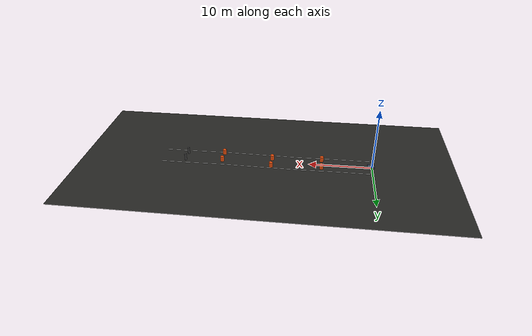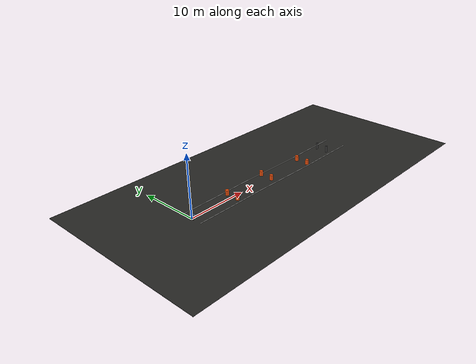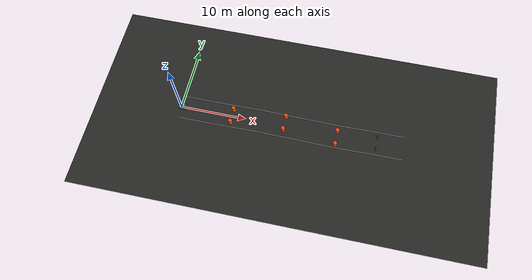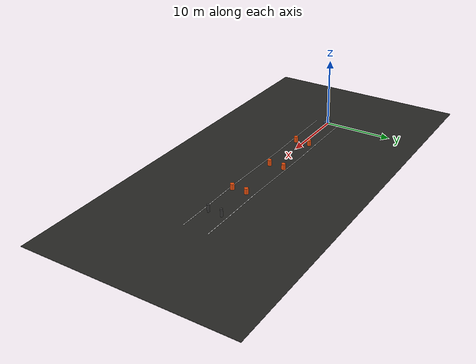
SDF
<?xml version='1.0'?>
<sdf version='1.9'>
  <world name='igvc_competition'>
    <plugin filename='ignition-gazebo-physics-system' name='ignition::gazebo::systems::Physics'/>
    <plugin filename='ignition-gazebo-user-commands-system' name='ignition::gazebo::systems::UserCommands'/>
    <plugin filename='ignition-gazebo-scene-broadcaster-system' name='ignition::gazebo::systems::SceneBroadcaster'/>
    <plugin filename='ignition-gazebo-sensors-system' name='ignition::gazebo::systems::Sensors'>
      <render_engine>ogre2</render_engine>
    </plugin>
    <light name='sun' type='directional'>
      <pose>0 0 20 0 0 0</pose>
      <diffuse>0.8 0.8 0.75 1</diffuse>
      <specular>0.2 0.2 0.2 1</specular>
      <direction>-0.35 0.15 -0.92</direction>
    </light>
    <gravity>0 0 -9.80665</gravity>
    <magnetic_field>6e-06 2.3e-05 -4.2e-05</magnetic_field>
    <atmosphere type='adiabatic'/>
    <physics name='default_physics' type='ode'>
      <max_step_size>0.001</max_step_size>
      <real_time_factor>1.0</real_time_factor>
      <real_time_update_rate>1000</real_time_update_rate>
    </physics>
    <scene>
      <ambient>0.45 0.45 0.45 1</ambient>
      <background>0.70 0.72 0.75 1</background>
      <shadows>true</shadows>
    </scene>
    <spherical_coordinates>
      <surface_model>EARTH_WGS84</surface_model>
      <latitude_deg>37.23027000</latitude_deg>
      <longitude_deg>-80.42504000</longitude_deg>
      <elevation>650.000</elevation>
      <heading_deg>0</heading_deg>
    </spherical_coordinates>

    <model name='asphalt_ground'>
      <static>1</static>
      <pose>17.0000 0.0000 -0.0250 0.000000 0.000000 0.000000</pose>
      <link name='link'>
        <collision name='collision'><geometry><box><size>60.0000 30.0000 0.0500</size></box></geometry></collision>
        <visual name='visual'>
          <geometry><box><size>60.0000 30.0000 0.0500</size></box></geometry>
          <material><ambient>0.16 0.16 0.15 1.0</ambient><diffuse>0.16 0.16 0.15 1.0</diffuse><specular>0.05 0.05 0.05 1</specular></material>
        </visual>
      </link>
    </model>
    <model name='left_boundary_0'>
      <static>1</static>
      <pose>2.9924 1.8288 0.011 0 0 -0.000011</pose>
      <link name='link'>
        <visual name='visual'>
          <geometry><box><size>5.9848 0.0762 0.012</size></box></geometry>
          <material><ambient>0.98 0.98 0.98 1</ambient><diffuse>0.98 0.98 0.98 1</diffuse><specular>0.05 0.05 0.05 1</specular><emissive>0.9 0.9 0.9 1</emissive></material>
        </visual>
      </link>
    </model>
    <model name='right_boundary_0'>
      <static>1</static>
      <pose>3.0076 -1.8288 0.011 0 0 0.000011</pose>
      <link name='link'>
        <visual name='visual'>
          <geometry><box><size>6.0152 0.0762 0.012</size></box></geometry>
          <material><ambient>0.98 0.98 0.98 1</ambient><diffuse>0.98 0.98 0.98 1</diffuse><specular>0.05 0.05 0.05 1</specular><emissive>0.9 0.9 0.9 1</emissive></material>
        </visual>
      </link>
    </model>
    <model name='left_boundary_1'>
      <static>1</static>
      <pose>8.9924 1.8788 0.011 0 0 0.016633</pose>
      <link name='link'>
        <visual name='visual'>
          <geometry><box><size>6.0161 0.0762 0.012</size></box></geometry>
          <material><ambient>0.98 0.98 0.98 1</ambient><diffuse>0.98 0.98 0.98 1</diffuse><specular>0.05 0.05 0.05 1</specular><emissive>0.9 0.9 0.9 1</emissive></material>
        </visual>
      </link>
    </model>
    <model name='right_boundary_1'>
      <static>1</static>
      <pose>9.0076 -1.7788 0.011 0 0 0.016697</pose>
      <link name='link'>
        <visual name='visual'>
          <geometry><box><size>5.9856 0.0762 0.012</size></box></geometry>
          <material><ambient>0.98 0.98 0.98 1</ambient><diffuse>0.98 0.98 0.98 1</diffuse><specular>0.05 0.05 0.05 1</specular><emissive>0.9 0.9 0.9 1</emissive></material>
        </visual>
      </link>
    </model>
    <model name='left_boundary_2'>
      <static>1</static>
      <pose>15.0152 1.8787 0.011 0 0 -0.016623</pose>
      <link name='link'>
        <visual name='visual'>
          <geometry><box><size>6.0313 0.0762 0.012</size></box></geometry>
          <material><ambient>0.98 0.98 0.98 1</ambient><diffuse>0.98 0.98 0.98 1</diffuse><specular>0.05 0.05 0.05 1</specular><emissive>0.9 0.9 0.9 1</emissive></material>
        </visual>
      </link>
    </model>
    <model name='right_boundary_2'>
      <static>1</static>
      <pose>14.9848 -1.7787 0.011 0 0 -0.016708</pose>
      <link name='link'>
        <visual name='visual'>
          <geometry><box><size>5.9704 0.0762 0.012</size></box></geometry>
          <material><ambient>0.98 0.98 0.98 1</ambient><diffuse>0.98 0.98 0.98 1</diffuse><specular>0.05 0.05 0.05 1</specular><emissive>0.9 0.9 0.9 1</emissive></material>
        </visual>
      </link>
    </model>
    <model name='left_boundary_3'>
      <static>1</static>
      <pose>21.0152 1.7787 0.011 0 0 -0.016708</pose>
      <link name='link'>
        <visual name='visual'>
          <geometry><box><size>5.9704 0.0762 0.012</size></box></geometry>
          <material><ambient>0.98 0.98 0.98 1</ambient><diffuse>0.98 0.98 0.98 1</diffuse><specular>0.05 0.05 0.05 1</specular><emissive>0.9 0.9 0.9 1</emissive></material>
        </visual>
      </link>
    </model>
    <model name='right_boundary_3'>
      <static>1</static>
      <pose>20.9848 -1.8787 0.011 0 0 -0.016623</pose>
      <link name='link'>
        <visual name='visual'>
          <geometry><box><size>6.0313 0.0762 0.012</size></box></geometry>
          <material><ambient>0.98 0.98 0.98 1</ambient><diffuse>0.98 0.98 0.98 1</diffuse><specular>0.05 0.05 0.05 1</specular><emissive>0.9 0.9 0.9 1</emissive></material>
        </visual>
      </link>
    </model>
    <model name='left_boundary_4'>
      <static>1</static>
      <pose>26.9909 1.7788 0.011 0 0 0.016701</pose>
      <link name='link'>
        <visual name='visual'>
          <geometry><box><size>5.9825 0.0762 0.012</size></box></geometry>
          <material><ambient>0.98 0.98 0.98 1</ambient><diffuse>0.98 0.98 0.98 1</diffuse><specular>0.05 0.05 0.05 1</specular><emissive>0.9 0.9 0.9 1</emissive></material>
        </visual>
      </link>
    </model>
    <model name='right_boundary_4'>
      <static>1</static>
      <pose>27.0091 -1.8788 0.011 0 0 0.016630</pose>
      <link name='link'>
        <visual name='visual'>
          <geometry><box><size>6.0191 0.0762 0.012</size></box></geometry>
          <material><ambient>0.98 0.98 0.98 1</ambient><diffuse>0.98 0.98 0.98 1</diffuse><specular>0.05 0.05 0.05 1</specular><emissive>0.9 0.9 0.9 1</emissive></material>
        </visual>
      </link>
    </model>
    <model name='left_boundary_5'>
      <static>1</static>
      <pose>31.9909 1.8288 0.011 0 0 0.000023</pose>
      <link name='link'>
        <visual name='visual'>
          <geometry><box><size>4.0183 0.0762 0.012</size></box></geometry>
          <material><ambient>0.98 0.98 0.98 1</ambient><diffuse>0.98 0.98 0.98 1</diffuse><specular>0.05 0.05 0.05 1</specular><emissive>0.9 0.9 0.9 1</emissive></material>
        </visual>
      </link>
    </model>
    <model name='right_boundary_5'>
      <static>1</static>
      <pose>32.0091 -1.8288 0.011 0 0 -0.000023</pose>
      <link name='link'>
        <visual name='visual'>
          <geometry><box><size>3.9817 0.0762 0.012</size></box></geometry>
          <material><ambient>0.98 0.98 0.98 1</ambient><diffuse>0.98 0.98 0.98 1</diffuse><specular>0.05 0.05 0.05 1</specular><emissive>0.9 0.9 0.9 1</emissive></material>
        </visual>
      </link>
    </model>
    <model name='gap1_left'>
      <static>1</static>
      <pose>8.0000 1.0800 0 0 0 0</pose>
      <link name='link'>
        <collision name='collision'><pose>0 0 0.4250 0 0 0</pose><geometry><cylinder><radius>0.2800</radius><length>0.8500</length></cylinder></geometry></collision>
        <visual name='visual'>
          <pose>0 0 0.4250 0 0 0</pose>
          <geometry><cylinder><radius>0.2800</radius><length>0.8500</length></cylinder></geometry>
          <material><ambient>0.95 0.32 0.05 1.0</ambient><diffuse>0.95 0.32 0.05 1.0</diffuse><specular>0.05 0.05 0.05 1</specular></material>
        </visual>
      </link>
    </model>
    <model name='gap1_right'>
      <static>1</static>
      <pose>8.0000 -1.0800 0 0 0 0</pose>
      <link name='link'>
        <collision name='collision'><pose>0 0 0.4250 0 0 0</pose><geometry><cylinder><radius>0.2800</radius><length>0.8500</length></cylinder></geometry></collision>
        <visual name='visual'>
          <pose>0 0 0.4250 0 0 0</pose>
          <geometry><cylinder><radius>0.2800</radius><length>0.8500</length></cylinder></geometry>
          <material><ambient>0.95 0.32 0.05 1.0</ambient><diffuse>0.95 0.32 0.05 1.0</diffuse><specular>0.05 0.05 0.05 1</specular></material>
        </visual>
      </link>
    </model>
    <model name='gap2_left'>
      <static>1</static>
      <pose>16.0000 1.4800 0 0 0 0</pose>
      <link name='link'>
        <collision name='collision'><pose>0 0 0.4250 0 0 0</pose><geometry><cylinder><radius>0.2800</radius><length>0.8500</length></cylinder></geometry></collision>
        <visual name='visual'>
          <pose>0 0 0.4250 0 0 0</pose>
          <geometry><cylinder><radius>0.2800</radius><length>0.8500</length></cylinder></geometry>
          <material><ambient>0.95 0.32 0.05 1.0</ambient><diffuse>0.95 0.32 0.05 1.0</diffuse><specular>0.05 0.05 0.05 1</specular></material>
        </visual>
      </link>
    </model>
    <model name='gap2_right'>
      <static>1</static>
      <pose>16.0000 -0.6800 0 0 0 0</pose>
      <link name='link'>
        <collision name='collision'><pose>0 0 0.4250 0 0 0</pose><geometry><cylinder><radius>0.2800</radius><length>0.8500</length></cylinder></geometry></collision>
        <visual name='visual'>
          <pose>0 0 0.4250 0 0 0</pose>
          <geometry><cylinder><radius>0.2800</radius><length>0.8500</length></cylinder></geometry>
          <material><ambient>0.95 0.32 0.05 1.0</ambient><diffuse>0.95 0.32 0.05 1.0</diffuse><specular>0.05 0.05 0.05 1</specular></material>
        </visual>
      </link>
    </model>
    <model name='gap3_left'>
      <static>1</static>
      <pose>24.0000 0.6800 0 0 0 0</pose>
      <link name='link'>
        <collision name='collision'><pose>0 0 0.4250 0 0 0</pose><geometry><cylinder><radius>0.2800</radius><length>0.8500</length></cylinder></geometry></collision>
        <visual name='visual'>
          <pose>0 0 0.4250 0 0 0</pose>
          <geometry><cylinder><radius>0.2800</radius><length>0.8500</length></cylinder></geometry>
          <material><ambient>0.95 0.32 0.05 1.0</ambient><diffuse>0.95 0.32 0.05 1.0</diffuse><specular>0.05 0.05 0.05 1</specular></material>
        </visual>
      </link>
    </model>
    <model name='gap3_right'>
      <static>1</static>
      <pose>24.0000 -1.4800 0 0 0 0</pose>
      <link name='link'>
        <collision name='collision'><pose>0 0 0.4250 0 0 0</pose><geometry><cylinder><radius>0.2800</radius><length>0.8500</length></cylinder></geometry></collision>
        <visual name='visual'>
          <pose>0 0 0.4250 0 0 0</pose>
          <geometry><cylinder><radius>0.2800</radius><length>0.8500</length></cylinder></geometry>
          <material><ambient>0.95 0.32 0.05 1.0</ambient><diffuse>0.95 0.32 0.05 1.0</diffuse><specular>0.05 0.05 0.05 1</specular></material>
        </visual>
      </link>
    </model>
    <model name='gap4_left'>
      <static>1</static>
      <pose>30.0000 0.9800 0 0 0 0</pose>
      <link name='link'>
        <collision name='collision'><pose>0 0 0.5500 0 0 0</pose><geometry><cylinder><radius>0.1800</radius><length>1.1000</length></cylinder></geometry></collision>
        <visual name='visual'>
          <pose>0 0 0.5500 0 0 0</pose>
          <geometry><cylinder><radius>0.1800</radius><length>1.1000</length></cylinder></geometry>
          <material><ambient>0.25 0.25 0.25 1.0</ambient><diffuse>0.25 0.25 0.25 1.0</diffuse><specular>0.05 0.05 0.05 1</specular></material>
        </visual>
      </link>
    </model>
    <model name='gap4_right'>
      <static>1</static>
      <pose>30.0000 -0.9800 0 0 0 0</pose>
      <link name='link'>
        <collision name='collision'><pose>0 0 0.5500 0 0 0</pose><geometry><cylinder><radius>0.1800</radius><length>1.1000</length></cylinder></geometry></collision>
        <visual name='visual'>
          <pose>0 0 0.5500 0 0 0</pose>
          <geometry><cylinder><radius>0.1800</radius><length>1.1000</length></cylinder></geometry>
          <material><ambient>0.25 0.25 0.25 1.0</ambient><diffuse>0.25 0.25 0.25 1.0</diffuse><specular>0.05 0.05 0.05 1</specular></material>
        </visual>
      </link>
    </model>
    <model name='shogi'>
      <pose>0.0000 0.0000 0.1295 0 0 0.000000</pose>
      <link name='base_link'>
        <inertial>
          <mass>90.0</mass>
          <inertia>
            <ixx>4.0</ixx><iyy>8.0</iyy><izz>9.0</izz>
            <ixy>0</ixy><ixz>0</ixz><iyz>0</iyz>
          </inertia>
        </inertial>
        <collision name='body_collision'>
          <pose>0.2250 0 0.1800 0 0 0</pose>
          <geometry><box><size>1.0900 0.8200 0.2600</size></box></geometry>
        </collision>
        <visual name='body_visual'>
          <pose>0.2250 0 0.1800 0 0 0</pose>
          <geometry><box><size>1.0900 0.8200 0.2600</size></box></geometry>
          <material><ambient>0.22 0.28 0.36 1.0</ambient><diffuse>0.22 0.28 0.36 1.0</diffuse><specular>0.05 0.05 0.05 1</specular></material>
        </visual>
        <sensor name='zed2i_rgbd' type='rgbd_camera'>
          <pose>0.657600 0.009075 0.307230 0 0.349070 0</pose>
          <always_on>1</always_on>
          <update_rate>15</update_rate>
          <visualize>false</visualize>
          <topic>/igvc_sim/zed</topic>
          <camera>
            <horizontal_fov>1.918862</horizontal_fov>
            <image>
              <width>960</width>
              <height>540</height>
              <format>R8G8B8</format>
            </image>
            <clip>
              <near>0.10</near>
              <far>15.0</far>
            </clip>
          </camera>
        </sensor>
      </link>
      <link name='left_wheel_link'>
        <pose>0 0.36163 0 1.570796 0 0</pose>
        <inertial><mass>3.0</mass><inertia><ixx>0.05</ixx><iyy>0.05</iyy><izz>0.05</izz><ixy>0</ixy><ixz>0</ixz><iyz>0</iyz></inertia></inertial>
        <collision name='collision'><geometry><cylinder><radius>0.12946</radius><length>0.1000</length></cylinder></geometry></collision>
        <visual name='visual'><geometry><cylinder><radius>0.12946</radius><length>0.1000</length></cylinder></geometry><material><ambient>0.03 0.03 0.03 1.0</ambient><diffuse>0.03 0.03 0.03 1.0</diffuse><specular>0.05 0.05 0.05 1</specular></material></visual>
      </link>
      <link name='right_wheel_link'>
        <pose>0 -0.36163 0 1.570796 0 0</pose>
        <inertial><mass>3.0</mass><inertia><ixx>0.05</ixx><iyy>0.05</iyy><izz>0.05</izz><ixy>0</ixy><ixz>0</ixz><iyz>0</iyz></inertia></inertial>
        <collision name='collision'><geometry><cylinder><radius>0.12946</radius><length>0.1000</length></cylinder></geometry></collision>
        <visual name='visual'><geometry><cylinder><radius>0.12946</radius><length>0.1000</length></cylinder></geometry><material><ambient>0.03 0.03 0.03 1.0</ambient><diffuse>0.03 0.03 0.03 1.0</diffuse><specular>0.05 0.05 0.05 1</specular></material></visual>
      </link>
      <joint name='Left_Wheel' type='revolute'>
        <parent>base_link</parent>
        <child>left_wheel_link</child>
        <axis><xyz>0 1 0</xyz><limit><lower>-1e16</lower><upper>1e16</upper></limit></axis>
      </joint>
      <joint name='Right_Wheel' type='revolute'>
        <parent>base_link</parent>
        <child>right_wheel_link</child>
        <axis><xyz>0 1 0</xyz><limit><lower>-1e16</lower><upper>1e16</upper></limit></axis>
      </joint>
      <plugin filename='ignition-gazebo-diff-drive-system' name='ignition::gazebo::systems::DiffDrive'>
        <left_joint>Left_Wheel</left_joint>
        <right_joint>Right_Wheel</right_joint>
        <wheel_separation>0.72326</wheel_separation>
        <wheel_radius>0.12946</wheel_radius>
        <topic>/cmd_vel_gazebo</topic>
        <odom_topic>/model/shogi/odometry</odom_topic>
        <tf_topic>/model/shogi/tf</tf_topic>
        <frame_id>odom</frame_id>
        <child_frame_id>base_link</child_frame_id>
        <odom_publish_frequency>50</odom_publish_frequency>
        <max_linear_acceleration>1.0</max_linear_acceleration>
        <max_angular_acceleration>2.0</max_angular_acceleration>
      </plugin>
    </model>
  </world>
</sdf>
